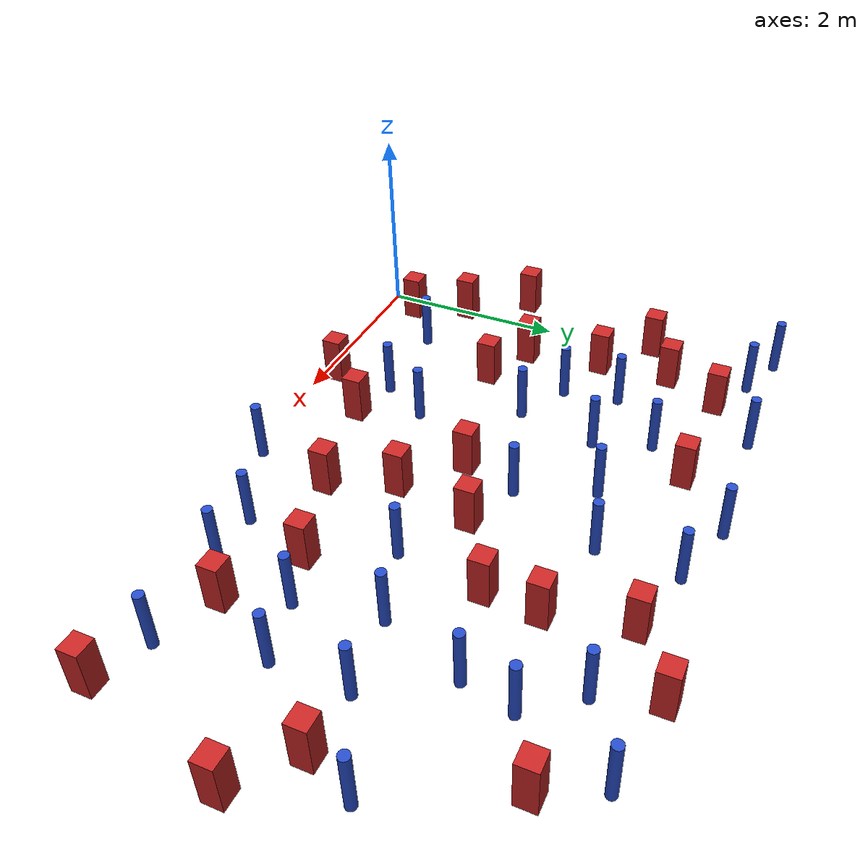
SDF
<sdf version="1.6">
 <model name="dense_85">
  <model name="square_post_obstacle2">
   <static>true</static>
   <pose>4.062146996 3.44321941891 8.22691968438e-08 7.2212513382e-06 -7.54495500217e-07 2.29674213826e-05</pose>
   <link name="link">
    <pose>0 0 0.25 0 -0 0</pose>
    <inertial>
     <mass>100</mass>
     <inertia>
      <ixx>0.166667</ixx>
      <ixy>0</ixy>
      <ixz>0</ixz>
      <iyy>0.166667</iyy>
      <iyz>0</iyz>
      <izz>0.166667</izz>
     </inertia>
    </inertial>
    <collision name="collision"><geometry><box><size>.2 .2 .5</size></box></geometry></collision>
    <visual name="visual">
     <geometry><box><size>.2 .2 .5</size></box></geometry>
     <material>
      <script><name>Gazebo/Red</name><uri>file://media/materials/scripts/gazebo.material</uri></script>
     </material>
    </visual>
   </link>
  </model>
  <model name="pole_obstacle13">
   <static>true</static>
   <pose>3.18473489793 4.40820543616 2.88873142074e-08 -9.90536689859e-09 4.60219948989e-07 -1.20965994961e-07</pose>
   <link name="link">
    <pose>0 0 0.3 0 -0 0</pose>
    <inertial>
     <mass>1</mass>
     <inertia><ixx>0.145833</ixx><ixy>0</ixy><ixz>0</ixz><iyy>0.145833</iyy><iyz>0</iyz><izz>0.125</izz></inertia>
    </inertial>
    <collision name="collision">
     <geometry><cylinder><radius>0.05</radius><length>.6</length></cylinder></geometry>
    </collision>
    <visual name="visual">
     <geometry><cylinder><radius>0.05</radius><length>.6</length></cylinder></geometry>
     <material>
      <script><name>Gazebo/Blue</name><uri>file://media/materials/scripts/gazebo.material</uri></script>
     </material>
    </visual>
   </link>
  </model>
  <model name="pole_obstacle16">
   <static>true</static>
   <pose>0.983162321599 3.14520407418 2.88873142074e-08 -9.90536689802e-09 4.6021994899e-07 -1.2096599496e-07</pose>
   <link name="link">
    <pose>0 0 0.3 0 -0 0</pose>
    <inertial>
     <mass>1</mass>
     <inertia><ixx>0.145833</ixx><ixy>0</ixy><ixz>0</ixz><iyy>0.145833</iyy><iyz>0</iyz><izz>0.125</izz></inertia>
    </inertial>
    <collision name="collision">
     <geometry><cylinder><radius>0.05</radius><length>.6</length></cylinder></geometry>
    </collision>
    <visual name="visual">
     <geometry><cylinder><radius>0.05</radius><length>.6</length></cylinder></geometry>
     <material>
      <script><name>Gazebo/Blue</name><uri>file://media/materials/scripts/gazebo.material</uri></script>
     </material>
    </visual>
   </link>
  </model>
  <model name="pole_obstacle32">
   <static>true</static>
   <pose>3.15653925007 3.61359111328 2.88873142074e-08 -9.90536690232e-09 4.6021994898e-07 -1.20965994968e-07</pose>
   <link name="link">
    <pose>0 0 0.3 0 -0 0</pose>
    <inertial>
     <mass>1</mass>
     <inertia><ixx>0.145833</ixx><ixy>0</ixy><ixz>0</ixz><iyy>0.145833</iyy><iyz>0</iyz><izz>0.125</izz></inertia>
    </inertial>
    <collision name="collision">
     <geometry><cylinder><radius>0.05</radius><length>.6</length></cylinder></geometry>
    </collision>
    <visual name="visual">
     <geometry><cylinder><radius>0.05</radius><length>.6</length></cylinder></geometry>
     <material>
      <script><name>Gazebo/Blue</name><uri>file://media/materials/scripts/gazebo.material</uri></script>
     </material>
    </visual>
   </link>
  </model>
  <model name="pole_obstacle40">
   <static>true</static>
   <pose>0.223186373433 4.3616640634 2.88873142074e-08 -9.90536689491e-09 4.60219948997e-07 -1.20965994955e-07</pose>
   <link name="link">
    <pose>0 0 0.3 0 -0 0</pose>
    <inertial>
     <mass>1</mass>
     <inertia><ixx>0.145833</ixx><ixy>0</ixy><ixz>0</ixz><iyy>0.145833</iyy><iyz>0</iyz><izz>0.125</izz></inertia>
    </inertial>
    <collision name="collision">
     <geometry><cylinder><radius>0.05</radius><length>.6</length></cylinder></geometry>
    </collision>
    <visual name="visual">
     <geometry><cylinder><radius>0.05</radius><length>.6</length></cylinder></geometry>
     <material>
      <script><name>Gazebo/Blue</name><uri>file://media/materials/scripts/gazebo.material</uri></script>
     </material>
    </visual>
   </link>
  </model>
  <model name="square_post_obstacle36">
   <static>true</static>
   <pose>5.59452878145 3.95318610439 8.22691968438e-08 7.2212513382e-06 -7.54495500217e-07 2.29674213826e-05</pose>
   <link name="link">
    <pose>0 0 0.25 0 -0 0</pose>
    <inertial>
     <mass>100</mass>
     <inertia>
      <ixx>0.166667</ixx>
      <ixy>0</ixy>
      <ixz>0</ixz>
      <iyy>0.166667</iyy>
      <iyz>0</iyz>
      <izz>0.166667</izz>
     </inertia>
    </inertial>
    <collision name="collision"><geometry><box><size>.2 .2 .5</size></box></geometry></collision>
    <visual name="visual">
     <geometry><box><size>.2 .2 .5</size></box></geometry>
     <material>
      <script><name>Gazebo/Red</name><uri>file://media/materials/scripts/gazebo.material</uri></script>
     </material>
    </visual>
   </link>
  </model>
  <model name="pole_obstacle52">
   <static>true</static>
   <pose>1.76650891803 3.12129963516 2.88873142074e-08 -9.90536689791e-09 4.6021994899e-07 -1.20965994959e-07</pose>
   <link name="link">
    <pose>0 0 0.3 0 -0 0</pose>
    <inertial>
     <mass>1</mass>
     <inertia><ixx>0.145833</ixx><ixy>0</ixy><ixz>0</ixz><iyy>0.145833</iyy><iyz>0</iyz><izz>0.125</izz></inertia>
    </inertial>
    <collision name="collision">
     <geometry><cylinder><radius>0.05</radius><length>.6</length></cylinder></geometry>
    </collision>
    <visual name="visual">
     <geometry><cylinder><radius>0.05</radius><length>.6</length></cylinder></geometry>
     <material>
      <script><name>Gazebo/Blue</name><uri>file://media/materials/scripts/gazebo.material</uri></script>
     </material>
    </visual>
   </link>
  </model>
  <model name="pole_obstacle55">
   <static>true</static>
   <pose>4.05016667078 0.575845721935 2.88873142074e-08 -9.90536689837e-09 4.60219948989e-07 -1.2096599496e-07</pose>
   <link name="link">
    <pose>0 0 0.3 0 -0 0</pose>
    <inertial>
     <mass>1</mass>
     <inertia><ixx>0.145833</ixx><ixy>0</ixy><ixz>0</ixz><iyy>0.145833</iyy><iyz>0</iyz><izz>0.125</izz></inertia>
    </inertial>
    <collision name="collision">
     <geometry><cylinder><radius>0.05</radius><length>.6</length></cylinder></geometry>
    </collision>
    <visual name="visual">
     <geometry><cylinder><radius>0.05</radius><length>.6</length></cylinder></geometry>
     <material>
      <script><name>Gazebo/Blue</name><uri>file://media/materials/scripts/gazebo.material</uri></script>
     </material>
    </visual>
   </link>
  </model>
  <model name="pole_obstacle58">
   <static>true</static>
   <pose>4.65480902449 4.06893869711 2.88873142074e-08 -9.90536690842e-09 4.60219948965e-07 -1.20965994976e-07</pose>
   <link name="link">
    <pose>0 0 0.3 0 -0 0</pose>
    <inertial>
     <mass>1</mass>
     <inertia><ixx>0.145833</ixx><ixy>0</ixy><ixz>0</ixz><iyy>0.145833</iyy><iyz>0</iyz><izz>0.125</izz></inertia>
    </inertial>
    <collision name="collision">
     <geometry><cylinder><radius>0.05</radius><length>.6</length></cylinder></geometry>
    </collision>
    <visual name="visual">
     <geometry><cylinder><radius>0.05</radius><length>.6</length></cylinder></geometry>
     <material>
      <script><name>Gazebo/Blue</name><uri>file://media/materials/scripts/gazebo.material</uri></script>
     </material>
    </visual>
   </link>
  </model>
  <model name="square_post_obstacle45">
   <static>true</static>
   <pose>0.578849314447 1.96255494894 8.22691968438e-08 7.2212513382e-06 -7.54495500217e-07 2.29674213826e-05</pose>
   <link name="link">
    <pose>0 0 0.25 0 -0 0</pose>
    <inertial>
     <mass>100</mass>
     <inertia>
      <ixx>0.166667</ixx>
      <ixy>0</ixy>
      <ixz>0</ixz>
      <iyy>0.166667</iyy>
      <iyz>0</iyz>
      <izz>0.166667</izz>
     </inertia>
    </inertial>
    <collision name="collision"><geometry><box><size>.2 .2 .5</size></box></geometry></collision>
    <visual name="visual">
     <geometry><box><size>.2 .2 .5</size></box></geometry>
     <material>
      <script><name>Gazebo/Red</name><uri>file://media/materials/scripts/gazebo.material</uri></script>
     </material>
    </visual>
   </link>
  </model>
  <model name="square_post_obstacle47">
   <static>true</static>
   <pose>4.26561126437 1.29651619205 8.22691968438e-08 7.2212513382e-06 -7.54495500217e-07 2.29674213826e-05</pose>
   <link name="link">
    <pose>0 0 0.25 0 -0 0</pose>
    <inertial>
     <mass>100</mass>
     <inertia>
      <ixx>0.166667</ixx>
      <ixy>0</ixy>
      <ixz>0</ixz>
      <iyy>0.166667</iyy>
      <iyz>0</iyz>
      <izz>0.166667</izz>
     </inertia>
    </inertial>
    <collision name="collision"><geometry><box><size>.2 .2 .5</size></box></geometry></collision>
    <visual name="visual">
     <geometry><box><size>.2 .2 .5</size></box></geometry>
     <material>
      <script><name>Gazebo/Red</name><uri>file://media/materials/scripts/gazebo.material</uri></script>
     </material>
    </visual>
   </link>
  </model>
  <model name="pole_obstacle71">
   <static>true</static>
   <pose>5.55527071689 0.659040202068 2.88873142074e-08 -9.90536689837e-09 4.60219948989e-07 -1.2096599496e-07</pose>
   <link name="link">
    <pose>0 0 0.3 0 -0 0</pose>
    <inertial>
     <mass>1</mass>
     <inertia><ixx>0.145833</ixx><ixy>0</ixy><ixz>0</ixz><iyy>0.145833</iyy><iyz>0</iyz><izz>0.125</izz></inertia>
    </inertial>
    <collision name="collision">
     <geometry><cylinder><radius>0.05</radius><length>.6</length></cylinder></geometry>
    </collision>
    <visual name="visual">
     <geometry><cylinder><radius>0.05</radius><length>.6</length></cylinder></geometry>
     <material>
      <script><name>Gazebo/Blue</name><uri>file://media/materials/scripts/gazebo.material</uri></script>
     </material>
    </visual>
   </link>
  </model>
  <model name="pole_obstacle73">
   <static>true</static>
   <pose>-0.290637246795 4.55423607331 2.88873142074e-08 -9.90536689618e-09 4.60219948994e-07 -1.20965994956e-07</pose>
   <link name="link">
    <pose>0 0 0.3 0 -0 0</pose>
    <inertial>
     <mass>1</mass>
     <inertia><ixx>0.145833</ixx><ixy>0</ixy><ixz>0</ixz><iyy>0.145833</iyy><iyz>0</iyz><izz>0.125</izz></inertia>
    </inertial>
    <collision name="collision">
     <geometry><cylinder><radius>0.05</radius><length>.6</length></cylinder></geometry>
    </collision>
    <visual name="visual">
     <geometry><cylinder><radius>0.05</radius><length>.6</length></cylinder></geometry>
     <material>
      <script><name>Gazebo/Blue</name><uri>file://media/materials/scripts/gazebo.material</uri></script>
     </material>
    </visual>
   </link>
  </model>
  <model name="pole_obstacle79">
   <static>true</static>
   <pose>4.90866591619 3.10098282916 2.88873142074e-08 -9.90536690245e-09 4.6021994898e-07 -1.20965994966e-07</pose>
   <link name="link">
    <pose>0 0 0.3 0 -0 0</pose>
    <inertial>
     <mass>1</mass>
     <inertia><ixx>0.145833</ixx><ixy>0</ixy><ixz>0</ixz><iyy>0.145833</iyy><iyz>0</iyz><izz>0.125</izz></inertia>
    </inertial>
    <collision name="collision">
     <geometry><cylinder><radius>0.05</radius><length>.6</length></cylinder></geometry>
    </collision>
    <visual name="visual">
     <geometry><cylinder><radius>0.05</radius><length>.6</length></cylinder></geometry>
     <material>
      <script><name>Gazebo/Blue</name><uri>file://media/materials/scripts/gazebo.material</uri></script>
     </material>
    </visual>
   </link>
  </model>
  <model name="square_post_obstacle69">
   <static>true</static>
   <pose>1.93498473462 4.09867230985 8.22691968438e-08 7.22125133819e-06 -7.54495500217e-07 2.29674213826e-05</pose>
   <link name="link">
    <pose>0 0 0.25 0 -0 0</pose>
    <inertial>
     <mass>100</mass>
     <inertia>
      <ixx>0.166667</ixx>
      <ixy>0</ixy>
      <ixz>0</ixz>
      <iyy>0.166667</iyy>
      <iyz>0</iyz>
      <izz>0.166667</izz>
     </inertia>
    </inertial>
    <collision name="collision"><geometry><box><size>.2 .2 .5</size></box></geometry></collision>
    <visual name="visual">
     <geometry><box><size>.2 .2 .5</size></box></geometry>
     <material>
      <script><name>Gazebo/Red</name><uri>file://media/materials/scripts/gazebo.material</uri></script>
     </material>
    </visual>
   </link>
  </model>
  <model name="pole_obstacle85">
   <static>true</static>
   <pose>0.758235859209 0.780216733735 2.88873142074e-08 -9.90536689967e-09 4.60219948986e-07 -1.20965994963e-07</pose>
   <link name="link">
    <pose>0 0 0.3 0 -0 0</pose>
    <inertial>
     <mass>1</mass>
     <inertia><ixx>0.145833</ixx><ixy>0</ixy><ixz>0</ixz><iyy>0.145833</iyy><iyz>0</iyz><izz>0.125</izz></inertia>
    </inertial>
    <collision name="collision">
     <geometry><cylinder><radius>0.05</radius><length>.6</length></cylinder></geometry>
    </collision>
    <visual name="visual">
     <geometry><cylinder><radius>0.05</radius><length>.6</length></cylinder></geometry>
     <material>
      <script><name>Gazebo/Blue</name><uri>file://media/materials/scripts/gazebo.material</uri></script>
     </material>
    </visual>
   </link>
  </model>
  <model name="square_post_obstacle75">
   <static>true</static>
   <pose>-0.421297651456 1.59461641238 8.22691968438e-08 7.2212513382e-06 -7.54495500217e-07 2.29674213826e-05</pose>
   <link name="link">
    <pose>0 0 0.25 0 -0 0</pose>
    <inertial>
     <mass>100</mass>
     <inertia>
      <ixx>0.166667</ixx>
      <ixy>0</ixy>
      <ixz>0</ixz>
      <iyy>0.166667</iyy>
      <iyz>0</iyz>
      <izz>0.166667</izz>
     </inertia>
    </inertial>
    <collision name="collision"><geometry><box><size>.2 .2 .5</size></box></geometry></collision>
    <visual name="visual">
     <geometry><box><size>.2 .2 .5</size></box></geometry>
     <material>
      <script><name>Gazebo/Red</name><uri>file://media/materials/scripts/gazebo.material</uri></script>
     </material>
    </visual>
   </link>
  </model>
  <model name="pole_obstacle90">
   <static>true</static>
   <pose>2.74068062391 2.65973264462 2.88873142074e-08 -9.90536690232e-09 4.6021994898e-07 -1.20965994968e-07</pose>
   <link name="link">
    <pose>0 0 0.3 0 -0 0</pose>
    <inertial>
     <mass>1</mass>
     <inertia><ixx>0.145833</ixx><ixy>0</ixy><ixz>0</ixz><iyy>0.145833</iyy><iyz>0</iyz><izz>0.125</izz></inertia>
    </inertial>
    <collision name="collision">
     <geometry><cylinder><radius>0.05</radius><length>.6</length></cylinder></geometry>
    </collision>
    <visual name="visual">
     <geometry><cylinder><radius>0.05</radius><length>.6</length></cylinder></geometry>
     <material>
      <script><name>Gazebo/Blue</name><uri>file://media/materials/scripts/gazebo.material</uri></script>
     </material>
    </visual>
   </link>
  </model>
  <model name="square_post_obstacle83">
   <static>true</static>
   <pose>3.28955789506 2.44246129395 8.22691968438e-08 7.2212513382e-06 -7.54495500217e-07 2.29674213826e-05</pose>
   <link name="link">
    <pose>0 0 0.25 0 -0 0</pose>
    <inertial>
     <mass>100</mass>
     <inertia>
      <ixx>0.166667</ixx>
      <ixy>0</ixy>
      <ixz>0</ixz>
      <iyy>0.166667</iyy>
      <iyz>0</iyz>
      <izz>0.166667</izz>
     </inertia>
    </inertial>
    <collision name="collision"><geometry><box><size>.2 .2 .5</size></box></geometry></collision>
    <visual name="visual">
     <geometry><box><size>.2 .2 .5</size></box></geometry>
     <material>
      <script><name>Gazebo/Red</name><uri>file://media/materials/scripts/gazebo.material</uri></script>
     </material>
    </visual>
   </link>
  </model>
  <model name="square_post_obstacle88">
   <static>true</static>
   <pose>3.11283507683 1.63237849577 8.22691968438e-08 7.2212513382e-06 -7.54495500217e-07 2.29674213826e-05</pose>
   <link name="link">
    <pose>0 0 0.25 0 -0 0</pose>
    <inertial>
     <mass>100</mass>
     <inertia>
      <ixx>0.166667</ixx>
      <ixy>0</ixy>
      <ixz>0</ixz>
      <iyy>0.166667</iyy>
      <iyz>0</iyz>
      <izz>0.166667</izz>
     </inertia>
    </inertial>
    <collision name="collision"><geometry><box><size>.2 .2 .5</size></box></geometry></collision>
    <visual name="visual">
     <geometry><box><size>.2 .2 .5</size></box></geometry>
     <material>
      <script><name>Gazebo/Red</name><uri>file://media/materials/scripts/gazebo.material</uri></script>
     </material>
    </visual>
   </link>
  </model>
  <model name="pole_obstacle101">
   <static>true</static>
   <pose>1.59274613654 2.28603636847 2.88873142074e-08 -9.90536689791e-09 4.6021994899e-07 -1.20965994959e-07</pose>
   <link name="link">
    <pose>0 0 0.3 0 -0 0</pose>
    <inertial>
     <mass>1</mass>
     <inertia><ixx>0.145833</ixx><ixy>0</ixy><ixz>0</ixz><iyy>0.145833</iyy><iyz>0</iyz><izz>0.125</izz></inertia>
    </inertial>
    <collision name="collision">
     <geometry><cylinder><radius>0.05</radius><length>.6</length></cylinder></geometry>
    </collision>
    <visual name="visual">
     <geometry><cylinder><radius>0.05</radius><length>.6</length></cylinder></geometry>
     <material>
      <script><name>Gazebo/Blue</name><uri>file://media/materials/scripts/gazebo.material</uri></script>
     </material>
    </visual>
   </link>
  </model>
  <model name="square_post_obstacle93">
   <static>true</static>
   <pose>0.241724282587 0.372869688427 8.22691968438e-08 7.2212513382e-06 -7.54495500217e-07 2.29674213826e-05</pose>
   <link name="link">
    <pose>0 0 0.25 0 -0 0</pose>
    <inertial>
     <mass>100</mass>
     <inertia>
      <ixx>0.166667</ixx>
      <ixy>0</ixy>
      <ixz>0</ixz>
      <iyy>0.166667</iyy>
      <iyz>0</iyz>
      <izz>0.166667</izz>
     </inertia>
    </inertial>
    <collision name="collision"><geometry><box><size>.2 .2 .5</size></box></geometry></collision>
    <visual name="visual">
     <geometry><box><size>.2 .2 .5</size></box></geometry>
     <material>
      <script><name>Gazebo/Red</name><uri>file://media/materials/scripts/gazebo.material</uri></script>
     </material>
    </visual>
   </link>
  </model>
  <model name="square_post_obstacle107">
   <static>true</static>
   <pose>0.466710206263 2.77962973129 8.22691968438e-08 7.22125133819e-06 -7.54495500217e-07 2.29674213826e-05</pose>
   <link name="link">
    <pose>0 0 0.25 0 -0 0</pose>
    <inertial>
     <mass>100</mass>
     <inertia>
      <ixx>0.166667</ixx>
      <ixy>0</ixy>
      <ixz>0</ixz>
      <iyy>0.166667</iyy>
      <iyz>0</iyz>
      <izz>0.166667</izz>
     </inertia>
    </inertial>
    <collision name="collision"><geometry><box><size>.2 .2 .5</size></box></geometry></collision>
    <visual name="visual">
     <geometry><box><size>.2 .2 .5</size></box></geometry>
     <material>
      <script><name>Gazebo/Red</name><uri>file://media/materials/scripts/gazebo.material</uri></script>
     </material>
    </visual>
   </link>
  </model>
  <model name="square_post_obstacle116">
   <static>true</static>
   <pose>1.11979004734 1.71169048348 8.22691968438e-08 7.2212513382e-06 -7.54495500217e-07 2.29674213826e-05</pose>
   <link name="link">
    <pose>0 0 0.25 0 -0 0</pose>
    <inertial>
     <mass>100</mass>
     <inertia>
      <ixx>0.166667</ixx>
      <ixy>0</ixy>
      <ixz>0</ixz>
      <iyy>0.166667</iyy>
      <iyz>0</iyz>
      <izz>0.166667</izz>
     </inertia>
    </inertial>
    <collision name="collision"><geometry><box><size>.2 .2 .5</size></box></geometry></collision>
    <visual name="visual">
     <geometry><box><size>.2 .2 .5</size></box></geometry>
     <material>
      <script><name>Gazebo/Red</name><uri>file://media/materials/scripts/gazebo.material</uri></script>
     </material>
    </visual>
   </link>
  </model>
  <model name="pole_obstacle120">
   <static>true</static>
   <pose>4.75560475428 1.47030281342 2.88873142074e-08 -9.90536689445e-09 4.60219948999e-07 -1.20965994956e-07</pose>
   <link name="link">
    <pose>0 0 0.3 0 -0 0</pose>
    <inertial>
     <mass>1</mass>
     <inertia><ixx>0.145833</ixx><ixy>0</ixy><ixz>0</ixz><iyy>0.145833</iyy><iyz>0</iyz><izz>0.125</izz></inertia>
    </inertial>
    <collision name="collision">
     <geometry><cylinder><radius>0.05</radius><length>.6</length></cylinder></geometry>
    </collision>
    <visual name="visual">
     <geometry><cylinder><radius>0.05</radius><length>.6</length></cylinder></geometry>
     <material>
      <script><name>Gazebo/Blue</name><uri>file://media/materials/scripts/gazebo.material</uri></script>
     </material>
    </visual>
   </link>
  </model>
  <model name="pole_obstacle121">
   <static>true</static>
   <pose>5.34711265626 2.37785144688 2.88873142074e-08 -9.90536690245e-09 4.6021994898e-07 -1.20965994966e-07</pose>
   <link name="link">
    <pose>0 0 0.3 0 -0 0</pose>
    <inertial>
     <mass>1</mass>
     <inertia><ixx>0.145833</ixx><ixy>0</ixy><ixz>0</ixz><iyy>0.145833</iyy><iyz>0</iyz><izz>0.125</izz></inertia>
    </inertial>
    <collision name="collision">
     <geometry><cylinder><radius>0.05</radius><length>.6</length></cylinder></geometry>
    </collision>
    <visual name="visual">
     <geometry><cylinder><radius>0.05</radius><length>.6</length></cylinder></geometry>
     <material>
      <script><name>Gazebo/Blue</name><uri>file://media/materials/scripts/gazebo.material</uri></script>
     </material>
    </visual>
   </link>
  </model>
  <model name="square_post_obstacle121">
   <static>true</static>
   <pose>4.95970962082 0.907179144384 8.22691968438e-08 7.2212513382e-06 -7.54495500217e-07 2.29674213826e-05</pose>
   <link name="link">
    <pose>0 0 0.25 0 -0 0</pose>
    <inertial>
     <mass>100</mass>
     <inertia>
      <ixx>0.166667</ixx>
      <ixy>0</ixy>
      <ixz>0</ixz>
      <iyy>0.166667</iyy>
      <iyz>0</iyz>
      <izz>0.166667</izz>
     </inertia>
    </inertial>
    <collision name="collision"><geometry><box><size>.2 .2 .5</size></box></geometry></collision>
    <visual name="visual">
     <geometry><box><size>.2 .2 .5</size></box></geometry>
     <material>
      <script><name>Gazebo/Red</name><uri>file://media/materials/scripts/gazebo.material</uri></script>
     </material>
    </visual>
   </link>
  </model>
  <model name="pole_obstacle122">
   <static>true</static>
   <pose>2.44371661772 3.40573432583 2.88873142074e-08 -9.90536690232e-09 4.6021994898e-07 -1.20965994968e-07</pose>
   <link name="link">
    <pose>0 0 0.3 0 -0 0</pose>
    <inertial>
     <mass>1</mass>
     <inertia><ixx>0.145833</ixx><ixy>0</ixy><ixz>0</ixz><iyy>0.145833</iyy><iyz>0</iyz><izz>0.125</izz></inertia>
    </inertial>
    <collision name="collision">
     <geometry><cylinder><radius>0.05</radius><length>.6</length></cylinder></geometry>
    </collision>
    <visual name="visual">
     <geometry><cylinder><radius>0.05</radius><length>.6</length></cylinder></geometry>
     <material>
      <script><name>Gazebo/Blue</name><uri>file://media/materials/scripts/gazebo.material</uri></script>
     </material>
    </visual>
   </link>
  </model>
  <model name="pole_obstacle130">
   <static>true</static>
   <pose>2.51026544646 4.62201940795 2.88873142074e-08 -9.90536689859e-09 4.60219948989e-07 -1.20965994961e-07</pose>
   <link name="link">
    <pose>0 0 0.3 0 -0 0</pose>
    <inertial>
     <mass>1</mass>
     <inertia><ixx>0.145833</ixx><ixy>0</ixy><ixz>0</ixz><iyy>0.145833</iyy><iyz>0</iyz><izz>0.125</izz></inertia>
    </inertial>
    <collision name="collision">
     <geometry><cylinder><radius>0.05</radius><length>.6</length></cylinder></geometry>
    </collision>
    <visual name="visual">
     <geometry><cylinder><radius>0.05</radius><length>.6</length></cylinder></geometry>
     <material>
      <script><name>Gazebo/Blue</name><uri>file://media/materials/scripts/gazebo.material</uri></script>
     </material>
    </visual>
   </link>
  </model>
  <model name="pole_obstacle131">
   <static>true</static>
   <pose>3.89083848318 2.02515649781 2.88873142074e-08 -9.90536689662e-09 4.60219948993e-07 -1.20965994957e-07</pose>
   <link name="link">
    <pose>0 0 0.3 0 -0 0</pose>
    <inertial>
     <mass>1</mass>
     <inertia><ixx>0.145833</ixx><ixy>0</ixy><ixz>0</ixz><iyy>0.145833</iyy><iyz>0</iyz><izz>0.125</izz></inertia>
    </inertial>
    <collision name="collision">
     <geometry><cylinder><radius>0.05</radius><length>.6</length></cylinder></geometry>
    </collision>
    <visual name="visual">
     <geometry><cylinder><radius>0.05</radius><length>.6</length></cylinder></geometry>
     <material>
      <script><name>Gazebo/Blue</name><uri>file://media/materials/scripts/gazebo.material</uri></script>
     </material>
    </visual>
   </link>
  </model>
  <model name="pole_obstacle134">
   <static>true</static>
   <pose>5.34154555311 1.62409567526 2.88873142074e-08 -9.90536689445e-09 4.60219948999e-07 -1.20965994956e-07</pose>
   <link name="link">
    <pose>0 0 0.3 0 -0 0</pose>
    <inertial>
     <mass>1</mass>
     <inertia><ixx>0.145833</ixx><ixy>0</ixy><ixz>0</ixz><iyy>0.145833</iyy><iyz>0</iyz><izz>0.125</izz></inertia>
    </inertial>
    <collision name="collision">
     <geometry><cylinder><radius>0.05</radius><length>.6</length></cylinder></geometry>
    </collision>
    <visual name="visual">
     <geometry><cylinder><radius>0.05</radius><length>.6</length></cylinder></geometry>
     <material>
      <script><name>Gazebo/Blue</name><uri>file://media/materials/scripts/gazebo.material</uri></script>
     </material>
    </visual>
   </link>
  </model>
  <model name="pole_obstacle141">
   <static>true</static>
   <pose>2.03128316658 1.31391764888 2.88873142074e-08 -9.90536689629e-09 4.60219948994e-07 -1.20965994957e-07</pose>
   <link name="link">
    <pose>0 0 0.3 0 -0 0</pose>
    <inertial>
     <mass>1</mass>
     <inertia><ixx>0.145833</ixx><ixy>0</ixy><ixz>0</ixz><iyy>0.145833</iyy><iyz>0</iyz><izz>0.125</izz></inertia>
    </inertial>
    <collision name="collision">
     <geometry><cylinder><radius>0.05</radius><length>.6</length></cylinder></geometry>
    </collision>
    <visual name="visual">
     <geometry><cylinder><radius>0.05</radius><length>.6</length></cylinder></geometry>
     <material>
      <script><name>Gazebo/Blue</name><uri>file://media/materials/scripts/gazebo.material</uri></script>
     </material>
    </visual>
   </link>
  </model>
  <model name="pole_obstacle145">
   <static>true</static>
   <pose>4.60626664698 2.27681054039 2.88873142074e-08 -9.90536690245e-09 4.6021994898e-07 -1.20965994966e-07</pose>
   <link name="link">
    <pose>0 0 0.3 0 -0 0</pose>
    <inertial>
     <mass>1</mass>
     <inertia><ixx>0.145833</ixx><ixy>0</ixy><ixz>0</ixz><iyy>0.145833</iyy><iyz>0</iyz><izz>0.125</izz></inertia>
    </inertial>
    <collision name="collision">
     <geometry><cylinder><radius>0.05</radius><length>.6</length></cylinder></geometry>
    </collision>
    <visual name="visual">
     <geometry><cylinder><radius>0.05</radius><length>.6</length></cylinder></geometry>
     <material>
      <script><name>Gazebo/Blue</name><uri>file://media/materials/scripts/gazebo.material</uri></script>
     </material>
    </visual>
   </link>
  </model>
  <model name="square_post_obstacle144">
   <static>true</static>
   <pose>3.35886243863 0.981629406882 8.22691968438e-08 7.2212513382e-06 -7.54495500217e-07 2.29674213826e-05</pose>
   <link name="link">
    <pose>0 0 0.25 0 -0 0</pose>
    <inertial>
     <mass>100</mass>
     <inertia>
      <ixx>0.166667</ixx>
      <ixy>0</ixy>
      <ixz>0</ixz>
      <iyy>0.166667</iyy>
      <iyz>0</iyz>
      <izz>0.166667</izz>
     </inertia>
    </inertial>
    <collision name="collision"><geometry><box><size>.2 .2 .5</size></box></geometry></collision>
    <visual name="visual">
     <geometry><box><size>.2 .2 .5</size></box></geometry>
     <material>
      <script><name>Gazebo/Red</name><uri>file://media/materials/scripts/gazebo.material</uri></script>
     </material>
    </visual>
   </link>
  </model>
  <model name="square_post_obstacle145">
   <static>true</static>
   <pose>5.94182676036 2.36542448707 8.22691968438e-08 7.2212513382e-06 -7.54495500217e-07 2.29674213826e-05</pose>
   <link name="link">
    <pose>0 0 0.25 0 -0 0</pose>
    <inertial>
     <mass>100</mass>
     <inertia>
      <ixx>0.166667</ixx>
      <ixy>0</ixy>
      <ixz>0</ixz>
      <iyy>0.166667</iyy>
      <iyz>0</iyz>
      <izz>0.166667</izz>
     </inertia>
    </inertial>
    <collision name="collision"><geometry><box><size>.2 .2 .5</size></box></geometry></collision>
    <visual name="visual">
     <geometry><box><size>.2 .2 .5</size></box></geometry>
     <material>
      <script><name>Gazebo/Red</name><uri>file://media/materials/scripts/gazebo.material</uri></script>
     </material>
    </visual>
   </link>
  </model>
  <model name="pole_obstacle153">
   <static>true</static>
   <pose>1.57483651848 3.69182474702 2.88873142074e-08 -9.90536689791e-09 4.6021994899e-07 -1.20965994959e-07</pose>
   <link name="link">
    <pose>0 0 0.3 0 -0 0</pose>
    <inertial>
     <mass>1</mass>
     <inertia><ixx>0.145833</ixx><ixy>0</ixy><ixz>0</ixz><iyy>0.145833</iyy><iyz>0</iyz><izz>0.125</izz></inertia>
    </inertial>
    <collision name="collision">
     <geometry><cylinder><radius>0.05</radius><length>.6</length></cylinder></geometry>
    </collision>
    <visual name="visual">
     <geometry><cylinder><radius>0.05</radius><length>.6</length></cylinder></geometry>
     <material>
      <script><name>Gazebo/Blue</name><uri>file://media/materials/scripts/gazebo.material</uri></script>
     </material>
    </visual>
   </link>
  </model>
  <model name="square_post_obstacle153">
   <static>true</static>
   <pose>-0.091797681498 3.22264916927 8.22691968438e-08 7.22125133819e-06 -7.54495500217e-07 2.29674213826e-05</pose>
   <link name="link">
    <pose>0 0 0.25 0 -0 0</pose>
    <inertial>
     <mass>100</mass>
     <inertia>
      <ixx>0.166667</ixx>
      <ixy>0</ixy>
      <ixz>0</ixz>
      <iyy>0.166667</iyy>
      <iyz>0</iyz>
      <izz>0.166667</izz>
     </inertia>
    </inertial>
    <collision name="collision"><geometry><box><size>.2 .2 .5</size></box></geometry></collision>
    <visual name="visual">
     <geometry><box><size>.2 .2 .5</size></box></geometry>
     <material>
      <script><name>Gazebo/Red</name><uri>file://media/materials/scripts/gazebo.material</uri></script>
     </material>
    </visual>
   </link>
  </model>
  <model name="pole_obstacle163">
   <static>true</static>
   <pose>6.13854482344 2.82607821008 2.88873142074e-08 -9.90536690245e-09 4.6021994898e-07 -1.20965994966e-07</pose>
   <link name="link">
    <pose>0 0 0.3 0 -0 0</pose>
    <inertial>
     <mass>1</mass>
     <inertia><ixx>0.145833</ixx><ixy>0</ixy><ixz>0</ixz><iyy>0.145833</iyy><iyz>0</iyz><izz>0.125</izz></inertia>
    </inertial>
    <collision name="collision">
     <geometry><cylinder><radius>0.05</radius><length>.6</length></cylinder></geometry>
    </collision>
    <visual name="visual">
     <geometry><cylinder><radius>0.05</radius><length>.6</length></cylinder></geometry>
     <material>
      <script><name>Gazebo/Blue</name><uri>file://media/materials/scripts/gazebo.material</uri></script>
     </material>
    </visual>
   </link>
  </model>
  <model name="square_post_obstacle158">
   <static>true</static>
   <pose>0.683829110132 4.11239577165 8.22691968438e-08 7.2212513382e-06 -7.54495500217e-07 2.29674213826e-05</pose>
   <link name="link">
    <pose>0 0 0.25 0 -0 0</pose>
    <inertial>
     <mass>100</mass>
     <inertia>
      <ixx>0.166667</ixx>
      <ixy>0</ixy>
      <ixz>0</ixz>
      <iyy>0.166667</iyy>
      <iyz>0</iyz>
      <izz>0.166667</izz>
     </inertia>
    </inertial>
    <collision name="collision"><geometry><box><size>.2 .2 .5</size></box></geometry></collision>
    <visual name="visual">
     <geometry><box><size>.2 .2 .5</size></box></geometry>
     <material>
      <script><name>Gazebo/Red</name><uri>file://media/materials/scripts/gazebo.material</uri></script>
     </material>
    </visual>
   </link>
  </model>
  <model name="square_post_obstacle160">
   <static>true</static>
   <pose>0.413211939052 3.53737971342 8.22691968438e-08 7.22125133819e-06 -7.54495500217e-07 2.29674213826e-05</pose>
   <link name="link">
    <pose>0 0 0.25 0 -0 0</pose>
    <inertial>
     <mass>100</mass>
     <inertia>
      <ixx>0.166667</ixx>
      <ixy>0</ixy>
      <ixz>0</ixz>
      <iyy>0.166667</iyy>
      <iyz>0</iyz>
      <izz>0.166667</izz>
     </inertia>
    </inertial>
    <collision name="collision"><geometry><box><size>.2 .2 .5</size></box></geometry></collision>
    <visual name="visual">
     <geometry><box><size>.2 .2 .5</size></box></geometry>
     <material>
      <script><name>Gazebo/Red</name><uri>file://media/materials/scripts/gazebo.material</uri></script>
     </material>
    </visual>
   </link>
  </model>
  <model name="square_post_obstacle161">
   <static>true</static>
   <pose>1.73333586975 0.165960571735 8.22691968438e-08 7.2212513382e-06 -7.54495500217e-07 2.29674213826e-05</pose>
   <link name="link">
    <pose>0 0 0.25 0 -0 0</pose>
    <inertial>
     <mass>100</mass>
     <inertia>
      <ixx>0.166667</ixx>
      <ixy>0</ixy>
      <ixz>0</ixz>
      <iyy>0.166667</iyy>
      <iyz>0</iyz>
      <izz>0.166667</izz>
     </inertia>
    </inertial>
    <collision name="collision"><geometry><box><size>.2 .2 .5</size></box></geometry></collision>
    <visual name="visual">
     <geometry><box><size>.2 .2 .5</size></box></geometry>
     <material>
      <script><name>Gazebo/Red</name><uri>file://media/materials/scripts/gazebo.material</uri></script>
     </material>
    </visual>
   </link>
  </model>
  <model name="pole_obstacle167">
   <static>true</static>
   <pose>4.55910694301 0.576673541064 2.88873142074e-08 -9.90536689837e-09 4.60219948989e-07 -1.2096599496e-07</pose>
   <link name="link">
    <pose>0 0 0.3 0 -0 0</pose>
    <inertial>
     <mass>1</mass>
     <inertia><ixx>0.145833</ixx><ixy>0</ixy><ixz>0</ixz><iyy>0.145833</iyy><iyz>0</iyz><izz>0.125</izz></inertia>
    </inertial>
    <collision name="collision">
     <geometry><cylinder><radius>0.05</radius><length>.6</length></cylinder></geometry>
    </collision>
    <visual name="visual">
     <geometry><cylinder><radius>0.05</radius><length>.6</length></cylinder></geometry>
     <material>
      <script><name>Gazebo/Blue</name><uri>file://media/materials/scripts/gazebo.material</uri></script>
     </material>
    </visual>
   </link>
  </model>
  <model name="square_post_obstacle167">
   <static>true</static>
   <pose>0.0113943146473 0.961047599435 8.22691968438e-08 7.2212513382e-06 -7.54495500217e-07 2.29674213826e-05</pose>
   <link name="link">
    <pose>0 0 0.25 0 -0 0</pose>
    <inertial>
     <mass>100</mass>
     <inertia>
      <ixx>0.166667</ixx>
      <ixy>0</ixy>
      <ixz>0</ixz>
      <iyy>0.166667</iyy>
      <iyz>0</iyz>
      <izz>0.166667</izz>
     </inertia>
    </inertial>
    <collision name="collision"><geometry><box><size>.2 .2 .5</size></box></geometry></collision>
    <visual name="visual">
     <geometry><box><size>.2 .2 .5</size></box></geometry>
     <material>
      <script><name>Gazebo/Red</name><uri>file://media/materials/scripts/gazebo.material</uri></script>
     </material>
    </visual>
   </link>
  </model>
  <model name="pole_obstacle178">
   <static>true</static>
   <pose>1.74711648371 0.815507520064 2.88873142074e-08 -9.90536689692e-09 4.60219948993e-07 -1.20965994958e-07</pose>
   <link name="link">
    <pose>0 0 0.3 0 -0 0</pose>
    <inertial>
     <mass>1</mass>
     <inertia><ixx>0.145833</ixx><ixy>0</ixy><ixz>0</ixz><iyy>0.145833</iyy><iyz>0</iyz><izz>0.125</izz></inertia>
    </inertial>
    <collision name="collision">
     <geometry><cylinder><radius>0.05</radius><length>.6</length></cylinder></geometry>
    </collision>
    <visual name="visual">
     <geometry><cylinder><radius>0.05</radius><length>.6</length></cylinder></geometry>
     <material>
      <script><name>Gazebo/Blue</name><uri>file://media/materials/scripts/gazebo.material</uri></script>
     </material>
    </visual>
   </link>
  </model>
  <model name="square_post_obstacle180">
   <static>true</static>
   <pose>3.8848983444 4.22326085638 8.22691968438e-08 7.2212513382e-06 -7.54495500217e-07 2.29674213826e-05</pose>
   <link name="link">
    <pose>0 0 0.25 0 -0 0</pose>
    <inertial>
     <mass>100</mass>
     <inertia>
      <ixx>0.166667</ixx>
      <ixy>0</ixy>
      <ixz>0</ixz>
      <iyy>0.166667</iyy>
      <iyz>0</iyz>
      <izz>0.166667</izz>
     </inertia>
    </inertial>
    <collision name="collision"><geometry><box><size>.2 .2 .5</size></box></geometry></collision>
    <visual name="visual">
     <geometry><box><size>.2 .2 .5</size></box></geometry>
     <material>
      <script><name>Gazebo/Red</name><uri>file://media/materials/scripts/gazebo.material</uri></script>
     </material>
    </visual>
   </link>
  </model>
  <model name="square_post_obstacle189">
   <static>true</static>
   <pose>2.25268386021 0.703580271355 8.22691968438e-08 7.2212513382e-06 -7.54495500217e-07 2.29674213826e-05</pose>
   <link name="link">
    <pose>0 0 0.25 0 -0 0</pose>
    <inertial>
     <mass>100</mass>
     <inertia>
      <ixx>0.166667</ixx>
      <ixy>0</ixy>
      <ixz>0</ixz>
      <iyy>0.166667</iyy>
      <iyz>0</iyz>
      <izz>0.166667</izz>
     </inertia>
    </inertial>
    <collision name="collision"><geometry><box><size>.2 .2 .5</size></box></geometry></collision>
    <visual name="visual">
     <geometry><box><size>.2 .2 .5</size></box></geometry>
     <material>
      <script><name>Gazebo/Red</name><uri>file://media/materials/scripts/gazebo.material</uri></script>
     </material>
    </visual>
   </link>
  </model>
  <model name="pole_obstacle191">
   <static>true</static>
   <pose>1.1685619937 4.57035297304 2.88873142074e-08 -9.90536689852e-09 4.60219948989e-07 -1.2096599496e-07</pose>
   <link name="link">
    <pose>0 0 0.3 0 -0 0</pose>
    <inertial>
     <mass>1</mass>
     <inertia><ixx>0.145833</ixx><ixy>0</ixy><ixz>0</ixz><iyy>0.145833</iyy><iyz>0</iyz><izz>0.125</izz></inertia>
    </inertial>
    <collision name="collision">
     <geometry><cylinder><radius>0.05</radius><length>.6</length></cylinder></geometry>
    </collision>
    <visual name="visual">
     <geometry><cylinder><radius>0.05</radius><length>.6</length></cylinder></geometry>
     <material>
      <script><name>Gazebo/Blue</name><uri>file://media/materials/scripts/gazebo.material</uri></script>
     </material>
    </visual>
   </link>
  </model>
  <model name="square_post_obstacle205">
   <static>true</static>
   <pose>6.43681997224 1.94491494396 8.22691968438e-08 7.2212513382e-06 -7.54495500217e-07 2.29674213826e-05</pose>
   <link name="link">
    <pose>0 0 0.25 0 -0 0</pose>
    <inertial>
     <mass>100</mass>
     <inertia>
      <ixx>0.166667</ixx>
      <ixy>0</ixy>
      <ixz>0</ixz>
      <iyy>0.166667</iyy>
      <iyz>0</iyz>
      <izz>0.166667</izz>
     </inertia>
    </inertial>
    <collision name="collision"><geometry><box><size>.2 .2 .5</size></box></geometry></collision>
    <visual name="visual">
     <geometry><box><size>.2 .2 .5</size></box></geometry>
     <material>
      <script><name>Gazebo/Red</name><uri>file://media/materials/scripts/gazebo.material</uri></script>
     </material>
    </visual>
   </link>
  </model>
  <model name="square_post_obstacle206">
   <static>true</static>
   <pose>4.4926005219 4.62681279372 8.22691968438e-08 7.2212513382e-06 -7.54495500217e-07 2.29674213826e-05</pose>
   <link name="link">
    <pose>0 0 0.25 0 -0 0</pose>
    <inertial>
     <mass>100</mass>
     <inertia>
      <ixx>0.166667</ixx>
      <ixy>0</ixy>
      <ixz>0</ixz>
      <iyy>0.166667</iyy>
      <iyz>0</iyz>
      <izz>0.166667</izz>
     </inertia>
    </inertial>
    <collision name="collision"><geometry><box><size>.2 .2 .5</size></box></geometry></collision>
    <visual name="visual">
     <geometry><box><size>.2 .2 .5</size></box></geometry>
     <material>
      <script><name>Gazebo/Red</name><uri>file://media/materials/scripts/gazebo.material</uri></script>
     </material>
    </visual>
   </link>
  </model>
  <model name="pole_obstacle195">
   <static>true</static>
   <pose>5.34209408805 4.47072459554 2.88873142074e-08 -9.90536690842e-09 4.60219948965e-07 -1.20965994976e-07</pose>
   <link name="link">
    <pose>0 0 0.3 0 -0 0</pose>
    <inertial>
     <mass>1</mass>
     <inertia><ixx>0.145833</ixx><ixy>0</ixy><ixz>0</ixz><iyy>0.145833</iyy><iyz>0</iyz><izz>0.125</izz></inertia>
    </inertial>
    <collision name="collision">
     <geometry><cylinder><radius>0.05</radius><length>.6</length></cylinder></geometry>
    </collision>
    <visual name="visual">
     <geometry><cylinder><radius>0.05</radius><length>.6</length></cylinder></geometry>
     <material>
      <script><name>Gazebo/Blue</name><uri>file://media/materials/scripts/gazebo.material</uri></script>
     </material>
    </visual>
   </link>
  </model>
  <model name="pole_obstacle203">
   <static>true</static>
   <pose>5.01134573544 3.59938887492 2.88873142074e-08 -9.90536690245e-09 4.6021994898e-07 -1.20965994966e-07</pose>
   <link name="link">
    <pose>0 0 0.3 0 -0 0</pose>
    <inertial>
     <mass>1</mass>
     <inertia><ixx>0.145833</ixx><ixy>0</ixy><ixz>0</ixz><iyy>0.145833</iyy><iyz>0</iyz><izz>0.125</izz></inertia>
    </inertial>
    <collision name="collision">
     <geometry><cylinder><radius>0.05</radius><length>.6</length></cylinder></geometry>
    </collision>
    <visual name="visual">
     <geometry><cylinder><radius>0.05</radius><length>.6</length></cylinder></geometry>
     <material>
      <script><name>Gazebo/Blue</name><uri>file://media/materials/scripts/gazebo.material</uri></script>
     </material>
    </visual>
   </link>
  </model>
  <model name="pole_obstacle204">
   <static>true</static>
   <pose>3.19467457638 0.145615036291 2.88873142074e-08 -9.90536689314e-09 4.60219949002e-07 -1.20965994953e-07</pose>
   <link name="link">
    <pose>0 0 0.3 0 -0 0</pose>
    <inertial>
     <mass>1</mass>
     <inertia><ixx>0.145833</ixx><ixy>0</ixy><ixz>0</ixz><iyy>0.145833</iyy><iyz>0</iyz><izz>0.125</izz></inertia>
    </inertial>
    <collision name="collision">
     <geometry><cylinder><radius>0.05</radius><length>.6</length></cylinder></geometry>
    </collision>
    <visual name="visual">
     <geometry><cylinder><radius>0.05</radius><length>.6</length></cylinder></geometry>
     <material>
      <script><name>Gazebo/Blue</name><uri>file://media/materials/scripts/gazebo.material</uri></script>
     </material>
    </visual>
   </link>
  </model>
  <model name="pole_obstacle206">
   <static>true</static>
   <pose>1.07053117359 2.56723272812 2.88873142074e-08 -9.90536689791e-09 4.6021994899e-07 -1.20965994959e-07</pose>
   <link name="link">
    <pose>0 0 0.3 0 -0 0</pose>
    <inertial>
     <mass>1</mass>
     <inertia><ixx>0.145833</ixx><ixy>0</ixy><ixz>0</ixz><iyy>0.145833</iyy><iyz>0</iyz><izz>0.125</izz></inertia>
    </inertial>
    <collision name="collision">
     <geometry><cylinder><radius>0.05</radius><length>.6</length></cylinder></geometry>
    </collision>
    <visual name="visual">
     <geometry><cylinder><radius>0.05</radius><length>.6</length></cylinder></geometry>
     <material>
      <script><name>Gazebo/Blue</name><uri>file://media/materials/scripts/gazebo.material</uri></script>
     </material>
    </visual>
   </link>
  </model>
  <model name="square_post_obstacle210">
   <static>true</static>
   <pose>6.06859105004 0.464624207577 8.22691968438e-08 7.2212513382e-06 -7.54495500217e-07 2.29674213826e-05</pose>
   <link name="link">
    <pose>0 0 0.25 0 -0 0</pose>
    <inertial>
     <mass>100</mass>
     <inertia>
      <ixx>0.166667</ixx>
      <ixy>0</ixy>
      <ixz>0</ixz>
      <iyy>0.166667</iyy>
      <iyz>0</iyz>
      <izz>0.166667</izz>
     </inertia>
    </inertial>
    <collision name="collision"><geometry><box><size>.2 .2 .5</size></box></geometry></collision>
    <visual name="visual">
     <geometry><box><size>.2 .2 .5</size></box></geometry>
     <material>
      <script><name>Gazebo/Red</name><uri>file://media/materials/scripts/gazebo.material</uri></script>
     </material>
    </visual>
   </link>
  </model>
  <model name="square_post_obstacle213">
   <static>true</static>
   <pose>2.57338572127 2.09837037033 8.22691968438e-08 7.2212513382e-06 -7.54495500217e-07 2.29674213826e-05</pose>
   <link name="link">
    <pose>0 0 0.25 0 -0 0</pose>
    <inertial>
     <mass>100</mass>
     <inertia>
      <ixx>0.166667</ixx>
      <ixy>0</ixy>
      <ixz>0</ixz>
      <iyy>0.166667</iyy>
      <iyz>0</iyz>
      <izz>0.166667</izz>
     </inertia>
    </inertial>
    <collision name="collision"><geometry><box><size>.2 .2 .5</size></box></geometry></collision>
    <visual name="visual">
     <geometry><box><size>.2 .2 .5</size></box></geometry>
     <material>
      <script><name>Gazebo/Red</name><uri>file://media/materials/scripts/gazebo.material</uri></script>
     </material>
    </visual>
   </link>
  </model>
  <model name="square_post_obstacle228">
   <static>true</static>
   <pose>4.0241496609 2.90635134047 8.22691968438e-08 7.2212513382e-06 -7.54495500217e-07 2.29674213826e-05</pose>
   <link name="link">
    <pose>0 0 0.25 0 -0 0</pose>
    <inertial>
     <mass>100</mass>
     <inertia>
      <ixx>0.166667</ixx>
      <ixy>0</ixy>
      <ixz>0</ixz>
      <iyy>0.166667</iyy>
      <iyz>0</iyz>
      <izz>0.166667</izz>
     </inertia>
    </inertial>
    <collision name="collision"><geometry><box><size>.2 .2 .5</size></box></geometry></collision>
    <visual name="visual">
     <geometry><box><size>.2 .2 .5</size></box></geometry>
     <material>
      <script><name>Gazebo/Red</name><uri>file://media/materials/scripts/gazebo.material</uri></script>
     </material>
    </visual>
   </link>
  </model>
 </model>
</sdf>
